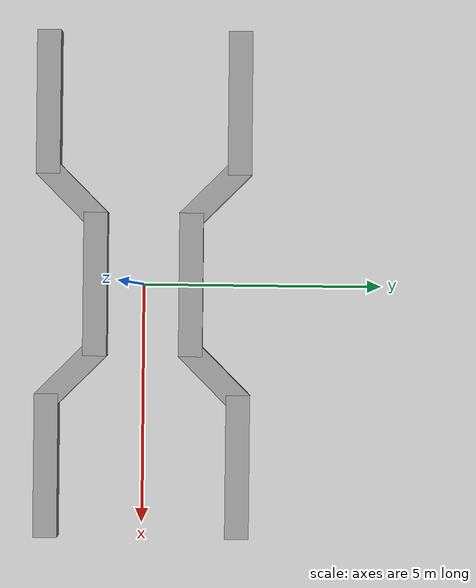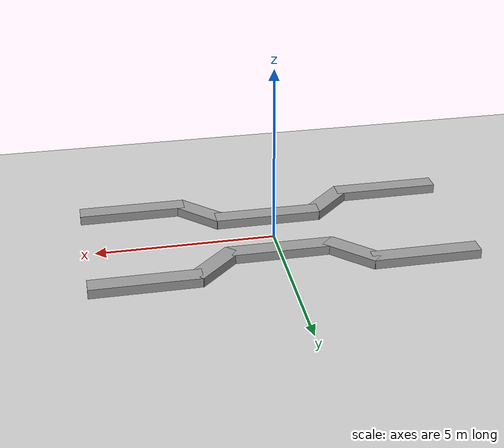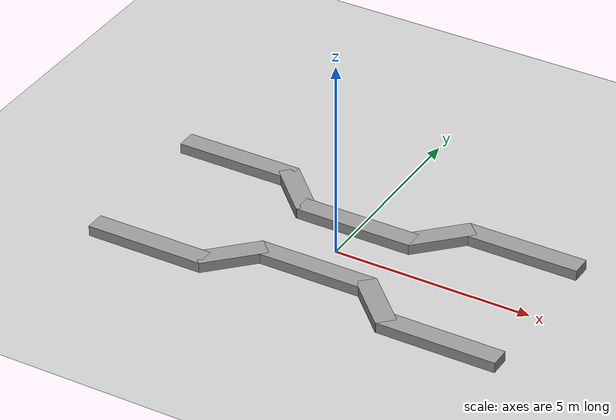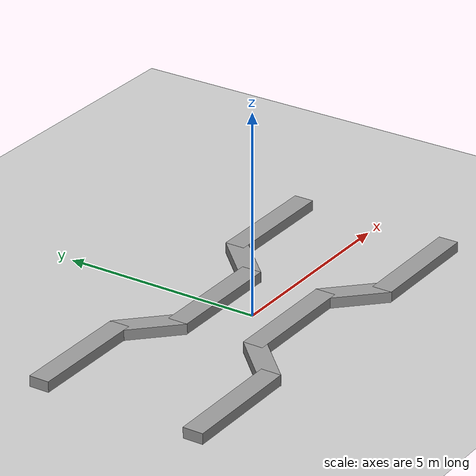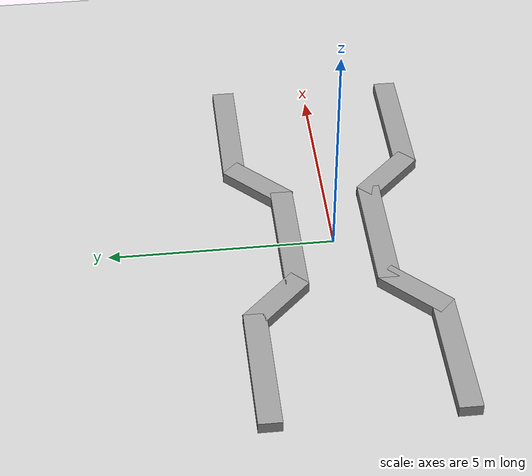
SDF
<sdf version="1.6">
 <world name="default">
  <light name="sun" type="directional">
   <pose>0 0 10 0 -0 0</pose>
   <diffuse>0.8 0.8 0.8 1</diffuse>
   <specular>0.1 0.1 0.1 1</specular>
   <attenuation>
    <range>1000</range>
    <constant>0.9</constant>
    <linear>0.01</linear>
    <quadratic>0.001</quadratic>
   </attenuation>
   <direction>-0.5 0.5 -1</direction>
  </light>
  <model name="ground_plane">
   <static>1</static>
   <link name="link">
    <collision name="collision">
     <geometry><plane><normal>0 0 1</normal><size>100 100</size></plane></geometry>
     <surface><friction><ode><mu>100</mu><mu2>50</mu2></ode></friction></surface>
    </collision>
    <visual name="visual">
     <cast_shadows>0</cast_shadows>
     <geometry><plane><normal>0 0 1</normal><size>100 100</size></plane></geometry>
     <material>
      <script><uri>file://media/materials/scripts/gazebo.material</uri><name>Gazebo/Grey</name></script>
     </material>
    </visual>
   </link>
  </model>
  <gravity>0 0 -9.8</gravity>
  <magnetic_field>6e-06 2.3e-05 -4.2e-05</magnetic_field>
  <atmosphere type="adiabatic"/>
  <physics name="default_physics" default="0" type="ode">
   <max_step_size>0.001</max_step_size>
   <real_time_factor>1</real_time_factor>
   <real_time_update_rate>1000</real_time_update_rate>
  </physics>
  <scene><ambient>0.4 0.4 0.4 1</ambient><background>0.7 0.7 0.7 1</background><shadows>1</shadows></scene>
  <spherical_coordinates>
   <surface_model>EARTH_WGS84</surface_model>
   <latitude_deg>0</latitude_deg>
   <longitude_deg>0</longitude_deg>
   <elevation>0</elevation>
   <heading_deg>0</heading_deg>
  </spherical_coordinates>
  <model name="laby1_0">
   <link name="Wall_01">
    <collision name="Wall_01_Collision">
     <pose>0 1.0 0 0 0 0</pose>
     <geometry><box><size>3.0 0.5 0.5</size></box></geometry>
    </collision>
    <visual name="Wall_01_Visual">
     <pose>0 1.0 0 0 0 0</pose>
     <geometry><box><size>3.0 0.5 0.5</size></box></geometry>
     <material>
      <script><uri>file://media/materials/scripts/gazebo.material</uri><name>Gazebo/Grey</name></script>
      <ambient>1 1 1 1</ambient>
     </material>
    </visual>
   </link>
   <link name="Wall_02">
    <collision name="Wall_02_Collision">
     <pose>0 -1.0 0 0 0 0</pose>
     <geometry><box><size>3.0 0.5 0.5</size></box></geometry>
    </collision>
    <visual name="Wall_02_Visual">
     <pose>0 -1.0 0 0 0 0</pose>
     <geometry><box><size>3.0 0.5 0.5</size></box></geometry>
     <material>
      <script><uri>file://media/materials/scripts/gazebo.material</uri><name>Gazebo/Grey</name></script>
      <ambient>1 1 1 1</ambient>
     </material>
    </visual>
   </link>
   <link name="Wall_03">
    <collision name="Wall_03_Collision">
     <pose>3.8 2.0 0 0 0 0</pose>
     <geometry><box><size>3.0 0.5 0.5</size></box></geometry>
    </collision>
    <visual name="Wall_03_Visual">
     <pose>3.8 2.0 0 0 0 0</pose>
     <geometry><box><size>3.0 0.5 0.5</size></box></geometry>
     <material>
      <script><uri>file://media/materials/scripts/gazebo.material</uri><name>Gazebo/Grey</name></script>
      <ambient>1 1 1 1</ambient>
     </material>
    </visual>
   </link>
   <link name="Wall_04">
    <collision name="Wall_04_Collision">
     <pose>3.8 -2.0 0 0 0 0</pose>
     <geometry><box><size>3.0 0.5 0.5</size></box></geometry>
    </collision>
    <visual name="Wall_04_Visual">
     <pose>3.8 -2.0 0 0 0 0</pose>
     <geometry><box><size>3.0 0.5 0.5</size></box></geometry>
     <material>
      <script><uri>file://media/materials/scripts/gazebo.material</uri><name>Gazebo/Grey</name></script>
      <ambient>1 1 1 1</ambient>
     </material>
    </visual>
   </link>
   <link name="Wall_05">
    <collision name="Wall_05_Collision">
     <pose>-3.8 2.0 0 0 0 0</pose>
     <geometry><box><size>3.0 0.5 0.5</size></box></geometry>
    </collision>
    <visual name="Wall_05_Visual">
     <pose>-3.8 2.0 0 0 0 0</pose>
     <geometry><box><size>3.0 0.5 0.5</size></box></geometry>
     <material>
      <script><uri>file://media/materials/scripts/gazebo.material</uri><name>Gazebo/Grey</name></script>
      <ambient>1 1 1 1</ambient>
     </material>
    </visual>
   </link>
   <link name="Wall_06">
    <collision name="Wall_06_Collision">
     <pose>-3.8 -2.0 0 0 0 0</pose>
     <geometry><box><size>3.0 0.5 0.5</size></box></geometry>
    </collision>
    <visual name="Wall_06_Visual">
     <pose>-3.8 -2.0 0 0 0 0</pose>
     <geometry><box><size>3.0 0.5 0.5</size></box></geometry>
     <material>
      <script><uri>file://media/materials/scripts/gazebo.material</uri><name>Gazebo/Grey</name></script>
      <ambient>1 1 1 1</ambient>
     </material>
    </visual>
   </link>
   <link name="Wall_07">
    <collision name="Wall_07_Collision">
     <pose>1.9 1.5 0 0 0 0.7854</pose>
     <geometry><box><size>1.65 0.5 0.5</size></box></geometry>
    </collision>
    <visual name="Wall_07_Visual">
     <pose>1.9 1.5 0 0 0 0.7854</pose>
     <geometry><box><size>1.65 0.5 0.5</size></box></geometry>
     <material>
      <script><uri>file://media/materials/scripts/gazebo.material</uri><name>Gazebo/Grey</name></script>
      <ambient>1 1 1 1</ambient>
     </material>
    </visual>
   </link>
   <link name="Wall_08">
    <collision name="Wall_08_Collision">
     <pose>-1.9 1.5 0 0 0 -0.7854</pose>
     <geometry><box><size>1.65 0.5 0.5</size></box></geometry>
    </collision>
    <visual name="Wall_08_Visual">
     <pose>-1.9 1.5 0 0 0 -0.7854</pose>
     <geometry><box><size>1.65 0.5 0.5</size></box></geometry>
     <material>
      <script><uri>file://media/materials/scripts/gazebo.material</uri><name>Gazebo/Grey</name></script>
      <ambient>1 1 1 1</ambient>
     </material>
    </visual>
   </link>
   <link name="Wall_09">
    <collision name="Wall_09_Collision">
     <pose>1.9 -1.5 0 0 0 -0.7854</pose>
     <geometry><box><size>1.65 0.5 0.5</size></box></geometry>
    </collision>
    <visual name="Wall_09_Visual">
     <pose>1.9 -1.5 0 0 0 -0.7854</pose>
     <geometry><box><size>1.65 0.5 0.5</size></box></geometry>
     <material>
      <script><uri>file://media/materials/scripts/gazebo.material</uri><name>Gazebo/Grey</name></script>
      <ambient>1 1 1 1</ambient>
     </material>
    </visual>
   </link>
   <link name="Wall_10">
    <collision name="Wall_10_Collision">
     <pose>-1.9 -1.5 0 0 0 0.7854</pose>
     <geometry><box><size>1.65 0.5 0.5</size></box></geometry>
    </collision>
    <visual name="Wall_10_Visual">
     <pose>-1.9 -1.5 0 0 0 0.7854</pose>
     <geometry><box><size>1.65 0.5 0.5</size></box></geometry>
     <material>
      <script><uri>file://media/materials/scripts/gazebo.material</uri><name>Gazebo/Grey</name></script>
      <ambient>1 1 1 1</ambient>
     </material>
    </visual>
   </link>
   <static>1</static>
  </model>
 </world>
</sdf>
